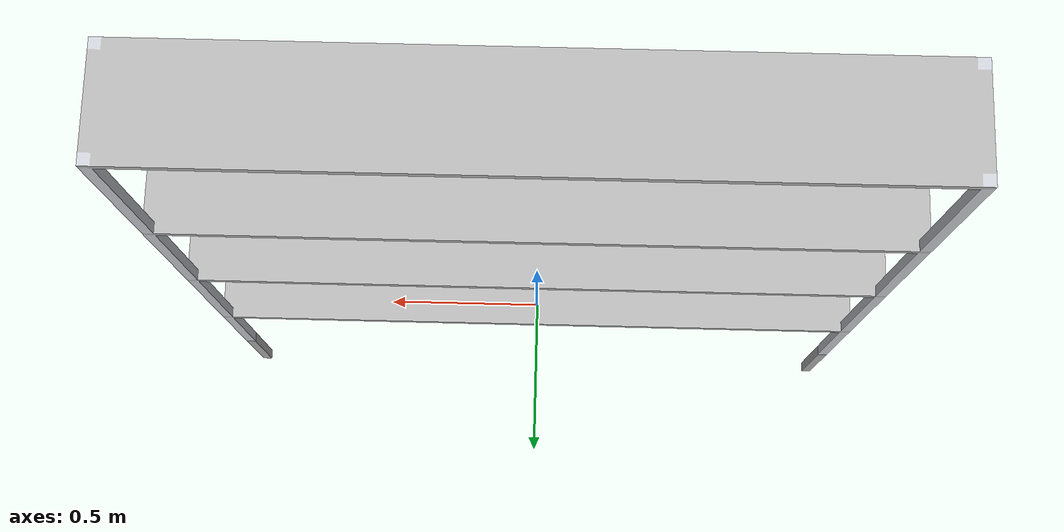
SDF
<?xml version='1.0'?>
<sdf version='1.7'>
  <model name='shelf'>
    <pose>0 0 0 0 0 0</pose>
    <static>true</static>
    <link name='shelf_link'>
      <pose>0 0 0 0 0 0</pose>
      <visual name='shelf_visual'>
        <geometry>
          <mesh>
            <uri>model://shelf/meshes/shelf.dae</uri>
          </mesh>
        </geometry>
      </visual>
      <visual name='aruco_tier1'>
        <pose>-0.45 -0.1505 0.91875 1.5708 0 0</pose>
        <geometry><box><size>0.0375 0.0375 0.001</size></box></geometry>
        <material><script>
          <uri>model://shelf/materials/scripts</uri>
          <uri>model://shelf/materials/textures</uri>
          <name>ArucoMarker/ShelfTier1</name>
        </script></material>
      </visual>
      <visual name='aruco_tier2'>
        <pose>-0.45 -0.1505 1.41875 1.5708 0 0</pose>
        <geometry><box><size>0.0375 0.0375 0.001</size></box></geometry>
        <material><script>
          <uri>model://shelf/materials/scripts</uri>
          <uri>model://shelf/materials/textures</uri>
          <name>ArucoMarker/ShelfTier2</name>
        </script></material>
      </visual>
      <!-- Collision follows the boards + posts (not a solid block), so a
           robot arm can reach into the open gaps between the shelves. -->
      <collision name='shelf_collision'>
        <geometry>
          <mesh>
            <uri>model://shelf/meshes/shelf_collision.dae</uri>
          </mesh>
        </geometry>
      </collision>
      <visual name='leg_ext_1'>
        <pose>0.985 0.135 -0.16 0 0 0</pose>
        <geometry><box><size>0.03 0.03 0.32</size></box></geometry>
      </visual>
      <visual name='leg_ext_2'>
        <pose>0.985 -0.135 -0.16 0 0 0</pose>
        <geometry><box><size>0.03 0.03 0.32</size></box></geometry>
      </visual>
      <visual name='leg_ext_3'>
        <pose>-0.985 0.135 -0.16 0 0 0</pose>
        <geometry><box><size>0.03 0.03 0.32</size></box></geometry>
      </visual>
      <visual name='leg_ext_4'>
        <pose>-0.985 -0.135 -0.16 0 0 0</pose>
        <geometry><box><size>0.03 0.03 0.32</size></box></geometry>
      </visual>
      <collision name='leg_ext_1_col'>
        <pose>0.985 0.135 -0.16 0 0 0</pose>
        <geometry><box><size>0.03 0.03 0.32</size></box></geometry>
      </collision>
      <collision name='leg_ext_2_col'>
        <pose>0.985 -0.135 -0.16 0 0 0</pose>
        <geometry><box><size>0.03 0.03 0.32</size></box></geometry>
      </collision>
      <collision name='leg_ext_3_col'>
        <pose>-0.985 0.135 -0.16 0 0 0</pose>
        <geometry><box><size>0.03 0.03 0.32</size></box></geometry>
      </collision>
      <collision name='leg_ext_4_col'>
        <pose>-0.985 -0.135 -0.16 0 0 0</pose>
        <geometry><box><size>0.03 0.03 0.32</size></box></geometry>
      </collision>
    </link>
  </model>
</sdf>
